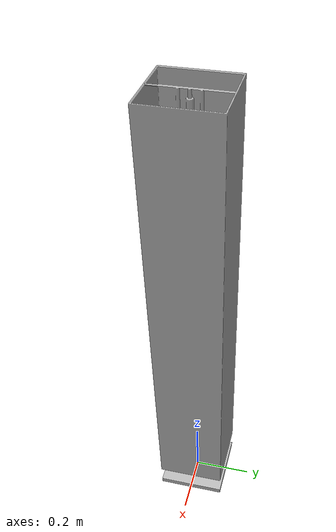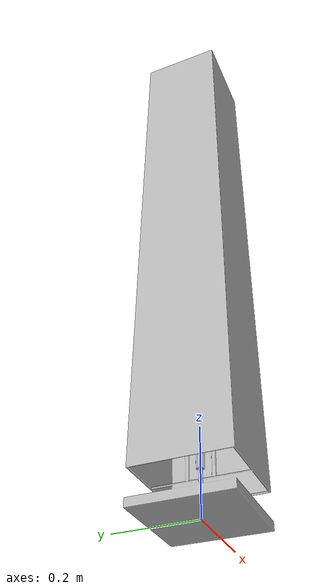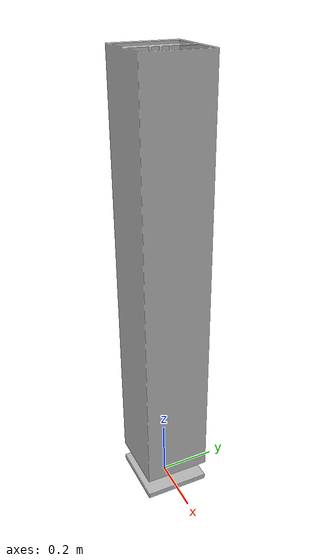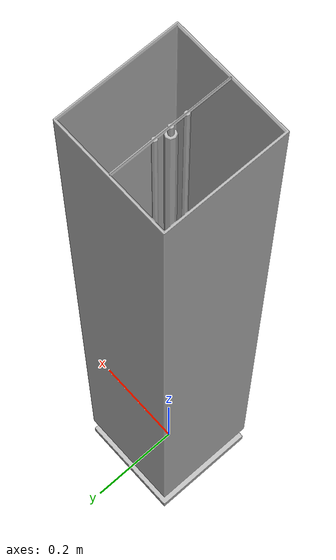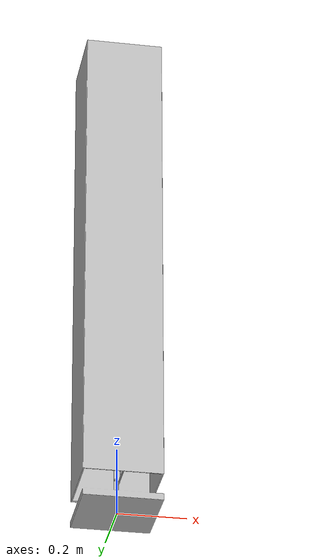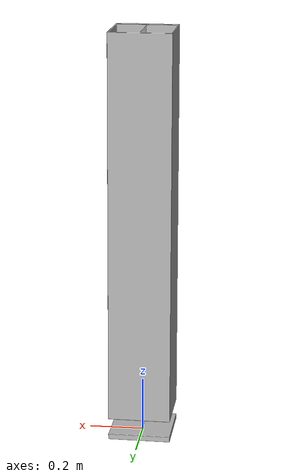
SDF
<?xml version='1.0'?>
<sdf version='1.4'>
  <model name='517'>
    <pose>0 0 0 0 0 0</pose>
    <static>true</static>
    <link name='link'>
      <collision name='collision'>
        <pose>0 0 0 0 0 0</pose>
        <geometry>
          <box>
            <size>0.23 0.23 2</size>
          </box>
        </geometry>
      </collision>
      <visual name='visual'>
        <pose>0 0 0 0 0 0</pose>
        <geometry>
          <mesh><uri>model://517/517.dae</uri></mesh>
        </geometry>
      </visual>
    </link>
  </model>
</sdf>
